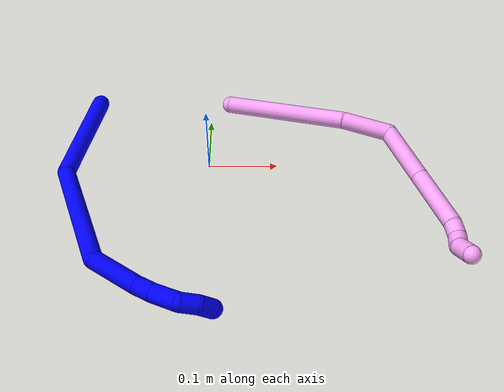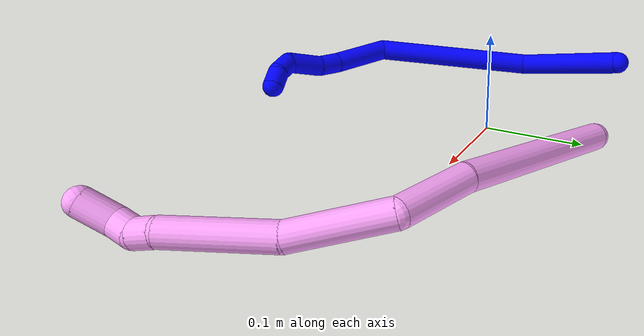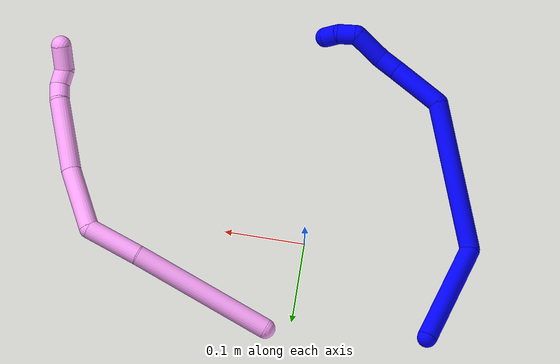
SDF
<sdf version="1.7">
 <world name="default">
  <model name="photoneo_s_sensor">
   <static>1</static>
   <pose>0 0 2 1.57079 1.57079 3.14159</pose>
   <link name="link">
    <inertial><mass>0.1</mass></inertial>
    <sensor name="sensor" type="depth">
     <update_rate>30</update_rate>
     <camera>
      <horizontal_fov>1.22</horizontal_fov>
      <image><width>1920</width><height>1200</height><format>B8G8R8</format></image>
      <clip><near>0.1</near><far>4</far></clip>
      <depth_camera><output>points</output></depth_camera>
     </camera>
     <plugin name="camera_plugin" filename="libgazebo_ros_depth_camera.so">
      <baseline>0.2</baseline>
      <alwaysOn>1</alwaysOn>
      <updateRate>0.0</updateRate>
      <cameraName>camera_ir</cameraName>
      <imageTopicName>/camera/color/image_raw</imageTopicName>
      <cameraInfoTopicName>/camera/color/camera_info</cameraInfoTopicName>
      <depthImageTopicName>/camera/depth/image_raw</depthImageTopicName>
      <depthImageCameraInfoTopicName>/camera/depth/camera_info</depthImageCameraInfoTopicName>
      <pointCloudTopicName>/camera/depth/points</pointCloudTopicName>
      <frameName>fr_optical</frameName>
      <pointCloudCutoff>0.1</pointCloudCutoff>
      <pointCloudCutoffMax>2.0</pointCloudCutoffMax>
      <distortionK1>0</distortionK1>
      <distortionK2>0</distortionK2>
      <distortionK3>0</distortionK3>
      <distortionT1>0</distortionT1>
      <distortionT2>0</distortionT2>
      <CxPrime>0</CxPrime>
      <Cx>0</Cx>
      <Cy>0</Cy>
      <focalLength>0</focalLength>
      <hackBaseline>0</hackBaseline>
     </plugin>
    </sensor>
   </link>
  </model>
  <model name="bin">
   <static>1</static>
   <link name="bottom">
    <collision name="collision-bottom">
     <pose>0 0 -0.01 0 -0 0</pose>
     <geometry><box><size>0.8 0.6 0.02</size></box></geometry>
     <surface>
      <friction><ode><mu>100</mu><mu2>100</mu2></ode></friction>
      <contact><collide_bitmask>65535</collide_bitmask></contact>
     </surface>
    </collision>
   </link>
   <link name="west_wall">
    <collision name="collision-west_wall">
     <pose>-0.41 0 0.1 0 -0 0</pose>
     <geometry><box><size>0.02 0.6 0.2</size></box></geometry>
     <surface>
      <friction><ode><mu>100</mu><mu2>100</mu2></ode></friction>
      <contact><collide_bitmask>65535</collide_bitmask></contact>
     </surface>
    </collision>
   </link>
   <link name="east_wall">
    <collision name="collision-east_wall">
     <pose>0.41 0 0.1 0 -0 0</pose>
     <geometry><box><size>0.02 0.6 0.2</size></box></geometry>
     <surface>
      <friction><ode><mu>100</mu><mu2>100</mu2></ode></friction>
      <contact><collide_bitmask>65535</collide_bitmask></contact>
     </surface>
    </collision>
   </link>
   <link name="south_wall">
    <collision name="collision-south_wall">
     <pose>0 -0.31 0.1 0 -0 0</pose>
     <geometry><box><size>0.8 0.02 0.2</size></box></geometry>
     <surface>
      <friction><ode><mu>100</mu><mu2>100</mu2></ode></friction>
      <contact><collide_bitmask>65535</collide_bitmask></contact>
     </surface>
    </collision>
   </link>
   <link name="north_wall">
    <collision name="collision-north_wall">
     <pose>0 0.31 0.1 0 -0 0</pose>
     <geometry><box><size>0.8 0.02 0.2</size></box></geometry>
     <surface>
      <friction><ode><mu>100</mu><mu2>100</mu2></ode></friction>
      <contact><collide_bitmask>65535</collide_bitmask></contact>
     </surface>
    </collision>
   </link>
  </model>
  <model name="1">
   <static>0</static>
   <link name="1">
    <collision name="collision-cylinder-e_1_1_4">
     <pose>-0.021216 -0.006049 0.061939 0.097354 -0.328547 -0.016151</pose>
     <geometry><cylinder><radius>0.0125</radius><length>0.131501</length></cylinder></geometry>
     <surface>
      <friction><ode><mu>1.16</mu><mu2>1.16</mu2><slip1>0</slip1><slip2>0</slip2></ode></friction>
      <contact><ode><kp>1e+06</kp><kd>1</kd><max_vel>0</max_vel><min_depth>0.001</min_depth></ode></contact>
     </surface>
    </collision>
    <visual name="visual-cylinder-e_1_1_4">
     <pose>-0.021216 -0.006049 0.061939 0.097354 -0.328547 -0.016151</pose>
     <geometry><cylinder><radius>0.0125</radius><length>0.131501</length></cylinder></geometry>
     <material><ambient>0 0 1 1</ambient></material>
    </visual>
    <collision name="collision-cylinder-e_2_4_5">
     <pose>-0.011226 -0.042838 0.207549 0.352078 0.336739 0.060453</pose>
     <geometry><cylinder><radius>0.0125</radius><length>0.188887</length></cylinder></geometry>
     <surface>
      <friction><ode><mu>1.16</mu><mu2>1.16</mu2><slip1>0</slip1><slip2>0</slip2></ode></friction>
      <contact><ode><kp>1e+06</kp><kd>1</kd><max_vel>0</max_vel><min_depth>0.001</min_depth></ode></contact>
     </surface>
    </collision>
    <visual name="visual-cylinder-e_2_4_5">
     <pose>-0.011226 -0.042838 0.207549 0.352078 0.336739 0.060453</pose>
     <geometry><cylinder><radius>0.0125</radius><length>0.188887</length></cylinder></geometry>
     <material><ambient>0 0 1 1</ambient></material>
    </visual>
    <collision name="collision-cylinder-e_3_5_6">
     <pose>0.038149 -0.098653 0.305063 1.0664 0.565303 0.339534</pose>
     <geometry><cylinder><radius>0.0125</radius><length>0.06784</length></cylinder></geometry>
     <surface>
      <friction><ode><mu>1.16</mu><mu2>1.16</mu2><slip1>0</slip1><slip2>0</slip2></ode></friction>
      <contact><ode><kp>1e+06</kp><kd>1</kd><max_vel>0</max_vel><min_depth>0.001</min_depth></ode></contact>
     </surface>
    </collision>
    <visual name="visual-cylinder-e_3_5_6">
     <pose>0.038149 -0.098653 0.305063 1.0664 0.565303 0.339534</pose>
     <geometry><cylinder><radius>0.0125</radius><length>0.06784</length></cylinder></geometry>
     <material><ambient>0 0 1 1</ambient></material>
    </visual>
    <collision name="collision-cylinder-e_4_6_7">
     <pose>0.064275 -0.13233 0.323758 1.05712 0.678129 0.406244</pose>
     <geometry><cylinder><radius>0.0125</radius><length>0.025363</length></cylinder></geometry>
     <surface>
      <friction><ode><mu>1.16</mu><mu2>1.16</mu2><slip1>0</slip1><slip2>0</slip2></ode></friction>
      <contact><ode><kp>1e+06</kp><kd>1</kd><max_vel>0</max_vel><min_depth>0.001</min_depth></ode></contact>
     </surface>
    </collision>
    <visual name="visual-cylinder-e_4_6_7">
     <pose>0.064275 -0.13233 0.323758 1.05712 0.678129 0.406244</pose>
     <geometry><cylinder><radius>0.0125</radius><length>0.025363</length></cylinder></geometry>
     <material><ambient>0 0 1 1</ambient></material>
    </visual>
    <collision name="collision-cylinder-e_5_7_8">
     <pose>0.088254 -0.150532 0.337961 0.798612 0.874268 0.389369</pose>
     <geometry><cylinder><radius>0.0125</radius><length>0.041777</length></cylinder></geometry>
     <surface>
      <friction><ode><mu>1.16</mu><mu2>1.16</mu2><slip1>0</slip1><slip2>0</slip2></ode></friction>
      <contact><ode><kp>1e+06</kp><kd>1</kd><max_vel>0</max_vel><min_depth>0.001</min_depth></ode></contact>
     </surface>
    </collision>
    <visual name="visual-cylinder-e_5_7_8">
     <pose>0.088254 -0.150532 0.337961 0.798612 0.874268 0.389369</pose>
     <geometry><cylinder><radius>0.0125</radius><length>0.041777</length></cylinder></geometry>
     <material><ambient>0 0 1 1</ambient></material>
    </visual>
    <collision name="collision-cylinder-e_6_8_9">
     <pose>0.11025 -0.170014 0.345452 1.75676 0.536052 0.639516</pose>
     <geometry><cylinder><radius>0.0125</radius><length>0.02339</length></cylinder></geometry>
     <surface>
      <friction><ode><mu>1.16</mu><mu2>1.16</mu2><slip1>0</slip1><slip2>0</slip2></ode></friction>
      <contact><ode><kp>1e+06</kp><kd>1</kd><max_vel>0</max_vel><min_depth>0.001</min_depth></ode></contact>
     </surface>
    </collision>
    <visual name="visual-cylinder-e_6_8_9">
     <pose>0.11025 -0.170014 0.345452 1.75676 0.536052 0.639516</pose>
     <geometry><cylinder><radius>0.0125</radius><length>0.02339</length></cylinder></geometry>
     <material><ambient>0 0 1 1</ambient></material>
    </visual>
    <collision name="collision-cylinder-e_7_9_2">
     <pose>0.117585 -0.189938 0.340416 1.87718 0.128528 0.175257</pose>
     <geometry><cylinder><radius>0.0125</radius><length>0.021242</length></cylinder></geometry>
     <surface>
      <friction><ode><mu>1.16</mu><mu2>1.16</mu2><slip1>0</slip1><slip2>0</slip2></ode></friction>
      <contact><ode><kp>1e+06</kp><kd>1</kd><max_vel>0</max_vel><min_depth>0.001</min_depth></ode></contact>
     </surface>
    </collision>
    <visual name="visual-cylinder-e_7_9_2">
     <pose>0.117585 -0.189938 0.340416 1.87718 0.128528 0.175257</pose>
     <geometry><cylinder><radius>0.0125</radius><length>0.021242</length></cylinder></geometry>
     <material><ambient>0 0 1 1</ambient></material>
    </visual>
    <collision name="collision-sphere-2">
     <pose>0.118946 -0.199981 0.337239 0 -0 0</pose>
     <geometry><sphere><radius>0.0125</radius></sphere></geometry>
     <surface>
      <friction><ode><mu>1.16</mu><mu2>1.16</mu2><slip1>0</slip1><slip2>0</slip2></ode></friction>
      <contact><ode><kp>1e+06</kp><kd>1</kd><max_vel>0</max_vel><min_depth>0.001</min_depth></ode></contact>
     </surface>
    </collision>
    <visual name="visual-sphere-2">
     <pose>0.118946 -0.199981 0.337239 0 -0 0</pose>
     <geometry><sphere><radius>0.0125</radius></sphere></geometry>
     <material><ambient>0 0 1 1</ambient></material>
    </visual>
    <collision name="collision-sphere-9">
     <pose>0.116223 -0.179895 0.343593 0 -0 0</pose>
     <geometry><sphere><radius>0.0125</radius></sphere></geometry>
     <surface>
      <friction><ode><mu>1.16</mu><mu2>1.16</mu2><slip1>0</slip1><slip2>0</slip2></ode></friction>
      <contact><ode><kp>1e+06</kp><kd>1</kd><max_vel>0</max_vel><min_depth>0.001</min_depth></ode></contact>
     </surface>
    </collision>
    <visual name="visual-sphere-9">
     <pose>0.116223 -0.179895 0.343593 0 -0 0</pose>
     <geometry><sphere><radius>0.0125</radius></sphere></geometry>
     <material><ambient>0 0 1 1</ambient></material>
    </visual>
    <collision name="collision-sphere-4">
     <pose>-0.042431 -0.012098 0.123878 0 -0 0</pose>
     <geometry><sphere><radius>0.0125</radius></sphere></geometry>
     <surface>
      <friction><ode><mu>1.16</mu><mu2>1.16</mu2><slip1>0</slip1><slip2>0</slip2></ode></friction>
      <contact><ode><kp>1e+06</kp><kd>1</kd><max_vel>0</max_vel><min_depth>0.001</min_depth></ode></contact>
     </surface>
    </collision>
    <visual name="visual-sphere-4">
     <pose>-0.042431 -0.012098 0.123878 0 -0 0</pose>
     <geometry><sphere><radius>0.0125</radius></sphere></geometry>
     <material><ambient>0 0 1 1</ambient></material>
    </visual>
    <collision name="collision-sphere-1">
     <geometry><sphere><radius>0.0125</radius></sphere></geometry>
     <surface>
      <friction><ode><mu>1.16</mu><mu2>1.16</mu2><slip1>0</slip1><slip2>0</slip2></ode></friction>
      <contact><ode><kp>1e+06</kp><kd>1</kd><max_vel>0</max_vel><min_depth>0.001</min_depth></ode></contact>
     </surface>
    </collision>
    <visual name="visual-sphere-1">
     <geometry><sphere><radius>0.0125</radius></sphere></geometry>
     <material><ambient>0 0 1 1</ambient></material>
    </visual>
    <collision name="collision-sphere-8">
     <pose>0.104277 -0.160133 0.347311 0 -0 0</pose>
     <geometry><sphere><radius>0.0125</radius></sphere></geometry>
     <surface>
      <friction><ode><mu>1.16</mu><mu2>1.16</mu2><slip1>0</slip1><slip2>0</slip2></ode></friction>
      <contact><ode><kp>1e+06</kp><kd>1</kd><max_vel>0</max_vel><min_depth>0.001</min_depth></ode></contact>
     </surface>
    </collision>
    <visual name="visual-sphere-8">
     <pose>0.104277 -0.160133 0.347311 0 -0 0</pose>
     <geometry><sphere><radius>0.0125</radius></sphere></geometry>
     <material><ambient>0 0 1 1</ambient></material>
    </visual>
    <collision name="collision-sphere-5">
     <pose>0.019979 -0.073577 0.29122 0 -0 0</pose>
     <geometry><sphere><radius>0.0125</radius></sphere></geometry>
     <surface>
      <friction><ode><mu>1.16</mu><mu2>1.16</mu2><slip1>0</slip1><slip2>0</slip2></ode></friction>
      <contact><ode><kp>1e+06</kp><kd>1</kd><max_vel>0</max_vel><min_depth>0.001</min_depth></ode></contact>
     </surface>
    </collision>
    <visual name="visual-sphere-5">
     <pose>0.019979 -0.073577 0.29122 0 -0 0</pose>
     <geometry><sphere><radius>0.0125</radius></sphere></geometry>
     <material><ambient>0 0 1 1</ambient></material>
    </visual>
    <collision name="collision-sphere-6">
     <pose>0.056319 -0.123729 0.318905 0 -0 0</pose>
     <geometry><sphere><radius>0.0125</radius></sphere></geometry>
     <surface>
      <friction><ode><mu>1.16</mu><mu2>1.16</mu2><slip1>0</slip1><slip2>0</slip2></ode></friction>
      <contact><ode><kp>1e+06</kp><kd>1</kd><max_vel>0</max_vel><min_depth>0.001</min_depth></ode></contact>
     </surface>
    </collision>
    <visual name="visual-sphere-6">
     <pose>0.056319 -0.123729 0.318905 0 -0 0</pose>
     <geometry><sphere><radius>0.0125</radius></sphere></geometry>
     <material><ambient>0 0 1 1</ambient></material>
    </visual>
    <collision name="collision-sphere-7">
     <pose>0.07223 -0.140932 0.328611 0 -0 0</pose>
     <geometry><sphere><radius>0.0125</radius></sphere></geometry>
     <surface>
      <friction><ode><mu>1.16</mu><mu2>1.16</mu2><slip1>0</slip1><slip2>0</slip2></ode></friction>
      <contact><ode><kp>1e+06</kp><kd>1</kd><max_vel>0</max_vel><min_depth>0.001</min_depth></ode></contact>
     </surface>
    </collision>
    <visual name="visual-sphere-7">
     <pose>0.07223 -0.140932 0.328611 0 -0 0</pose>
     <geometry><sphere><radius>0.0125</radius></sphere></geometry>
     <material><ambient>0 0 1 1</ambient></material>
    </visual>
    <inertial>
     <pose>0.016143 -0.066472 0.211371 0 -0 0</pose>
     <mass>0.5</mass>
     <inertia>
      <ixx>0.000803</ixx>
      <ixy>0</ixy>
      <ixz>0</ixz>
      <iyy>0.000782</iyy>
      <iyz>0</iyz>
      <izz>0.00011</izz>
     </inertia>
    </inertial>
   </link>
   <pose>-0.167937 0.099958 0.039717 1.45302 -0.785801 -0.036709</pose>
  </model>
  <model name="4">
   <static>0</static>
   <link name="4">
    <collision name="collision-cylinder-e_1_1_4">
     <pose>-0.001806 -0.015561 0.088929 0.173223 -0.020003 -0.001737</pose>
     <geometry><cylinder><radius>0.0125</radius><length>0.180597</length></cylinder></geometry>
     <surface>
      <friction><ode><mu>1.16</mu><mu2>1.16</mu2><slip1>0</slip1><slip2>0</slip2></ode></friction>
      <contact><ode><kp>1e+06</kp><kd>1</kd><max_vel>0</max_vel><min_depth>0.001</min_depth></ode></contact>
     </surface>
    </collision>
    <visual name="visual-cylinder-e_1_1_4">
     <pose>-0.001806 -0.015561 0.088929 0.173223 -0.020003 -0.001737</pose>
     <geometry><cylinder><radius>0.0125</radius><length>0.180597</length></cylinder></geometry>
     <material><ambient>1 0.65098 0.996078 1</ambient></material>
    </visual>
    <collision name="collision-cylinder-e_2_4_5">
     <pose>-0.00282 -0.031827 0.212667 0.020267 0.022762 0.000231</pose>
     <geometry><cylinder><radius>0.0125</radius><length>0.069648</length></cylinder></geometry>
     <surface>
      <friction><ode><mu>1.16</mu><mu2>1.16</mu2><slip1>0</slip1><slip2>0</slip2></ode></friction>
      <contact><ode><kp>1e+06</kp><kd>1</kd><max_vel>0</max_vel><min_depth>0.001</min_depth></ode></contact>
     </surface>
    </collision>
    <visual name="visual-cylinder-e_2_4_5">
     <pose>-0.00282 -0.031827 0.212667 0.020267 0.022762 0.000231</pose>
     <geometry><cylinder><radius>0.0125</radius><length>0.069648</length></cylinder></geometry>
     <material><ambient>1 0.65098 0.996078 1</ambient></material>
    </visual>
    <collision name="collision-cylinder-e_3_5_6">
     <pose>0.027641 -0.032455 0.277116 -0.002591 0.785844 -0.001074</pose>
     <geometry><cylinder><radius>0.0125</radius><length>0.083876</length></cylinder></geometry>
     <surface>
      <friction><ode><mu>1.16</mu><mu2>1.16</mu2><slip1>0</slip1><slip2>0</slip2></ode></friction>
      <contact><ode><kp>1e+06</kp><kd>1</kd><max_vel>0</max_vel><min_depth>0.001</min_depth></ode></contact>
     </surface>
    </collision>
    <visual name="visual-cylinder-e_3_5_6">
     <pose>0.027641 -0.032455 0.277116 -0.002591 0.785844 -0.001074</pose>
     <geometry><cylinder><radius>0.0125</radius><length>0.083876</length></cylinder></geometry>
     <material><ambient>1 0.65098 0.996078 1</ambient></material>
    </visual>
    <collision name="collision-cylinder-e_4_6_7">
     <pose>0.092816 -0.042193 0.335551 0.328516 0.862414 0.152224</pose>
     <geometry><cylinder><radius>0.0125</radius><length>0.093514</length></cylinder></geometry>
     <surface>
      <friction><ode><mu>1.16</mu><mu2>1.16</mu2><slip1>0</slip1><slip2>0</slip2></ode></friction>
      <contact><ode><kp>1e+06</kp><kd>1</kd><max_vel>0</max_vel><min_depth>0.001</min_depth></ode></contact>
     </surface>
    </collision>
    <visual name="visual-cylinder-e_4_6_7">
     <pose>0.092816 -0.042193 0.335551 0.328516 0.862414 0.152224</pose>
     <geometry><cylinder><radius>0.0125</radius><length>0.093514</length></cylinder></geometry>
     <material><ambient>1 0.65098 0.996078 1</ambient></material>
    </visual>
    <collision name="collision-cylinder-e_5_7_8">
     <pose>0.13721 -0.052327 0.369301 0.064247 1.06107 0.037698</pose>
     <geometry><cylinder><radius>0.0125</radius><length>0.020358</length></cylinder></geometry>
     <surface>
      <friction><ode><mu>1.16</mu><mu2>1.16</mu2><slip1>0</slip1><slip2>0</slip2></ode></friction>
      <contact><ode><kp>1e+06</kp><kd>1</kd><max_vel>0</max_vel><min_depth>0.001</min_depth></ode></contact>
     </surface>
    </collision>
    <visual name="visual-cylinder-e_5_7_8">
     <pose>0.13721 -0.052327 0.369301 0.064247 1.06107 0.037698</pose>
     <geometry><cylinder><radius>0.0125</radius><length>0.020358</length></cylinder></geometry>
     <material><ambient>1 0.65098 0.996078 1</ambient></material>
    </visual>
    <collision name="collision-cylinder-e_6_8_9">
     <pose>0.155389 -0.056791 0.376087 1.15503 1.11714 0.773456</pose>
     <geometry><cylinder><radius>0.0125</radius><length>0.02068</length></cylinder></geometry>
     <surface>
      <friction><ode><mu>1.16</mu><mu2>1.16</mu2><slip1>0</slip1><slip2>0</slip2></ode></friction>
      <contact><ode><kp>1e+06</kp><kd>1</kd><max_vel>0</max_vel><min_depth>0.001</min_depth></ode></contact>
     </surface>
    </collision>
    <visual name="visual-cylinder-e_6_8_9">
     <pose>0.155389 -0.056791 0.376087 1.15503 1.11714 0.773456</pose>
     <geometry><cylinder><radius>0.0125</radius><length>0.02068</length></cylinder></geometry>
     <material><ambient>1 0.65098 0.996078 1</ambient></material>
    </visual>
    <collision name="collision-cylinder-e_7_9_2">
     <pose>0.173596 -0.071338 0.385515 0.939983 0.605342 0.314612</pose>
     <geometry><cylinder><radius>0.0125</radius><length>0.031327</length></cylinder></geometry>
     <surface>
      <friction><ode><mu>1.16</mu><mu2>1.16</mu2><slip1>0</slip1><slip2>0</slip2></ode></friction>
      <contact><ode><kp>1e+06</kp><kd>1</kd><max_vel>0</max_vel><min_depth>0.001</min_depth></ode></contact>
     </surface>
    </collision>
    <visual name="visual-cylinder-e_7_9_2">
     <pose>0.173596 -0.071338 0.385515 0.939983 0.605342 0.314612</pose>
     <geometry><cylinder><radius>0.0125</radius><length>0.031327</length></cylinder></geometry>
     <material><ambient>1 0.65098 0.996078 1</ambient></material>
    </visual>
    <collision name="collision-sphere-2">
     <pose>0.182509 -0.08174 0.393111 0 -0 0</pose>
     <geometry><sphere><radius>0.0125</radius></sphere></geometry>
     <surface>
      <friction><ode><mu>1.16</mu><mu2>1.16</mu2><slip1>0</slip1><slip2>0</slip2></ode></friction>
      <contact><ode><kp>1e+06</kp><kd>1</kd><max_vel>0</max_vel><min_depth>0.001</min_depth></ode></contact>
     </surface>
    </collision>
    <visual name="visual-sphere-2">
     <pose>0.182509 -0.08174 0.393111 0 -0 0</pose>
     <geometry><sphere><radius>0.0125</radius></sphere></geometry>
     <material><ambient>1 0.65098 0.996078 1</ambient></material>
    </visual>
    <collision name="collision-sphere-9">
     <pose>0.164683 -0.060937 0.377918 0 -0 0</pose>
     <geometry><sphere><radius>0.0125</radius></sphere></geometry>
     <surface>
      <friction><ode><mu>1.16</mu><mu2>1.16</mu2><slip1>0</slip1><slip2>0</slip2></ode></friction>
      <contact><ode><kp>1e+06</kp><kd>1</kd><max_vel>0</max_vel><min_depth>0.001</min_depth></ode></contact>
     </surface>
    </collision>
    <visual name="visual-sphere-9">
     <pose>0.164683 -0.060937 0.377918 0 -0 0</pose>
     <geometry><sphere><radius>0.0125</radius></sphere></geometry>
     <material><ambient>1 0.65098 0.996078 1</ambient></material>
    </visual>
    <collision name="collision-sphere-4">
     <pose>-0.003612 -0.031121 0.177859 0 -0 0</pose>
     <geometry><sphere><radius>0.0125</radius></sphere></geometry>
     <surface>
      <friction><ode><mu>1.16</mu><mu2>1.16</mu2><slip1>0</slip1><slip2>0</slip2></ode></friction>
      <contact><ode><kp>1e+06</kp><kd>1</kd><max_vel>0</max_vel><min_depth>0.001</min_depth></ode></contact>
     </surface>
    </collision>
    <visual name="visual-sphere-4">
     <pose>-0.003612 -0.031121 0.177859 0 -0 0</pose>
     <geometry><sphere><radius>0.0125</radius></sphere></geometry>
     <material><ambient>1 0.65098 0.996078 1</ambient></material>
    </visual>
    <collision name="collision-sphere-1">
     <geometry><sphere><radius>0.0125</radius></sphere></geometry>
     <surface>
      <friction><ode><mu>1.16</mu><mu2>1.16</mu2><slip1>0</slip1><slip2>0</slip2></ode></friction>
      <contact><ode><kp>1e+06</kp><kd>1</kd><max_vel>0</max_vel><min_depth>0.001</min_depth></ode></contact>
     </surface>
    </collision>
    <visual name="visual-sphere-1">
     <geometry><sphere><radius>0.0125</radius></sphere></geometry>
     <material><ambient>1 0.65098 0.996078 1</ambient></material>
    </visual>
    <collision name="collision-sphere-8">
     <pose>0.146095 -0.052646 0.374257 0 -0 0</pose>
     <geometry><sphere><radius>0.0125</radius></sphere></geometry>
     <surface>
      <friction><ode><mu>1.16</mu><mu2>1.16</mu2><slip1>0</slip1><slip2>0</slip2></ode></friction>
      <contact><ode><kp>1e+06</kp><kd>1</kd><max_vel>0</max_vel><min_depth>0.001</min_depth></ode></contact>
     </surface>
    </collision>
    <visual name="visual-sphere-8">
     <pose>0.146095 -0.052646 0.374257 0 -0 0</pose>
     <geometry><sphere><radius>0.0125</radius></sphere></geometry>
     <material><ambient>1 0.65098 0.996078 1</ambient></material>
    </visual>
    <collision name="collision-sphere-5">
     <pose>-0.002027 -0.032532 0.247475 0 -0 0</pose>
     <geometry><sphere><radius>0.0125</radius></sphere></geometry>
     <surface>
      <friction><ode><mu>1.16</mu><mu2>1.16</mu2><slip1>0</slip1><slip2>0</slip2></ode></friction>
      <contact><ode><kp>1e+06</kp><kd>1</kd><max_vel>0</max_vel><min_depth>0.001</min_depth></ode></contact>
     </surface>
    </collision>
    <visual name="visual-sphere-5">
     <pose>-0.002027 -0.032532 0.247475 0 -0 0</pose>
     <geometry><sphere><radius>0.0125</radius></sphere></geometry>
     <material><ambient>1 0.65098 0.996078 1</ambient></material>
    </visual>
    <collision name="collision-sphere-6">
     <pose>0.057308 -0.032379 0.306757 0 -0 0</pose>
     <geometry><sphere><radius>0.0125</radius></sphere></geometry>
     <surface>
      <friction><ode><mu>1.16</mu><mu2>1.16</mu2><slip1>0</slip1><slip2>0</slip2></ode></friction>
      <contact><ode><kp>1e+06</kp><kd>1</kd><max_vel>0</max_vel><min_depth>0.001</min_depth></ode></contact>
     </surface>
    </collision>
    <visual name="visual-sphere-6">
     <pose>0.057308 -0.032379 0.306757 0 -0 0</pose>
     <geometry><sphere><radius>0.0125</radius></sphere></geometry>
     <material><ambient>1 0.65098 0.996078 1</ambient></material>
    </visual>
    <collision name="collision-sphere-7">
     <pose>0.128324 -0.052008 0.364344 0 -0 0</pose>
     <geometry><sphere><radius>0.0125</radius></sphere></geometry>
     <surface>
      <friction><ode><mu>1.16</mu><mu2>1.16</mu2><slip1>0</slip1><slip2>0</slip2></ode></friction>
      <contact><ode><kp>1e+06</kp><kd>1</kd><max_vel>0</max_vel><min_depth>0.001</min_depth></ode></contact>
     </surface>
    </collision>
    <visual name="visual-sphere-7">
     <pose>0.128324 -0.052008 0.364344 0 -0 0</pose>
     <geometry><sphere><radius>0.0125</radius></sphere></geometry>
     <material><ambient>1 0.65098 0.996078 1</ambient></material>
    </visual>
    <inertial>
     <pose>0.043841 -0.032339 0.225734 0 -0 0</pose>
     <mass>0.5</mass>
     <inertia><ixx>0.000638</ixx><ixy>0</ixy><ixz>0</ixz><iyy>0.00065</iyy><iyz>0</iyz><izz>4.8e-05</izz></inertia>
    </inertial>
   </link>
   <pose>0.030371 0.117376 0.023706 -1.64176 0.25194 -1.9181</pose>
  </model>
 </world>
</sdf>
